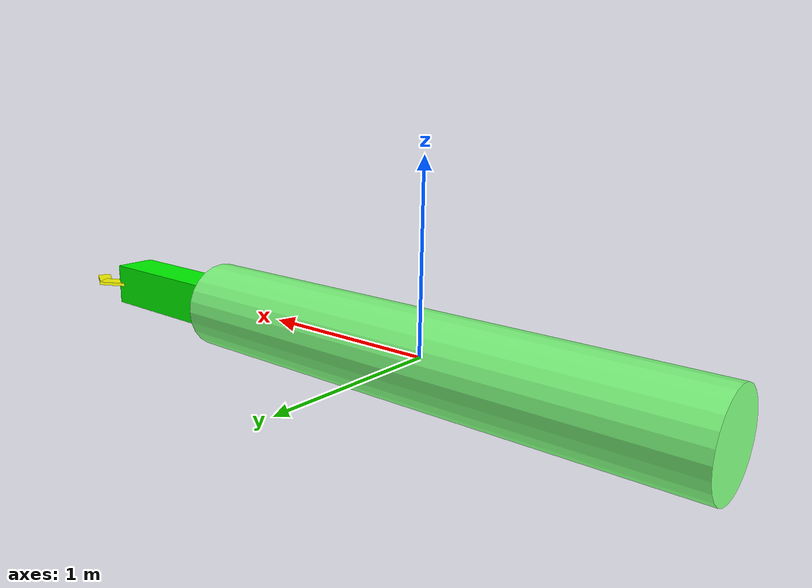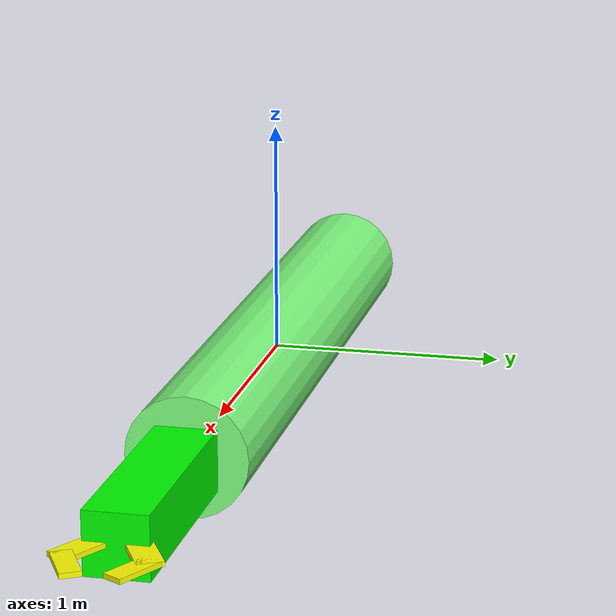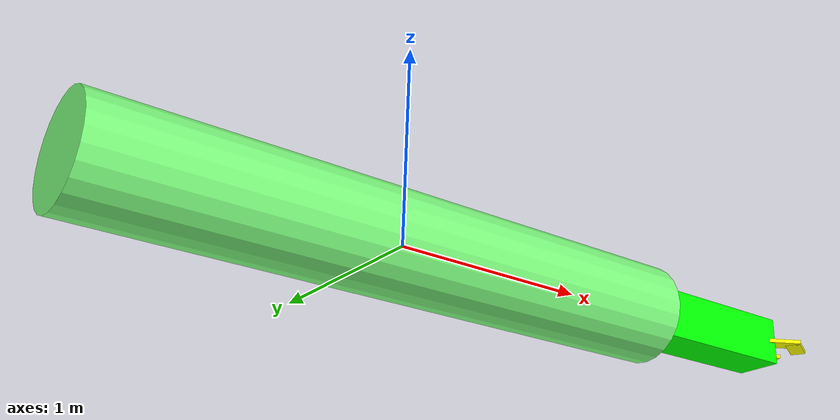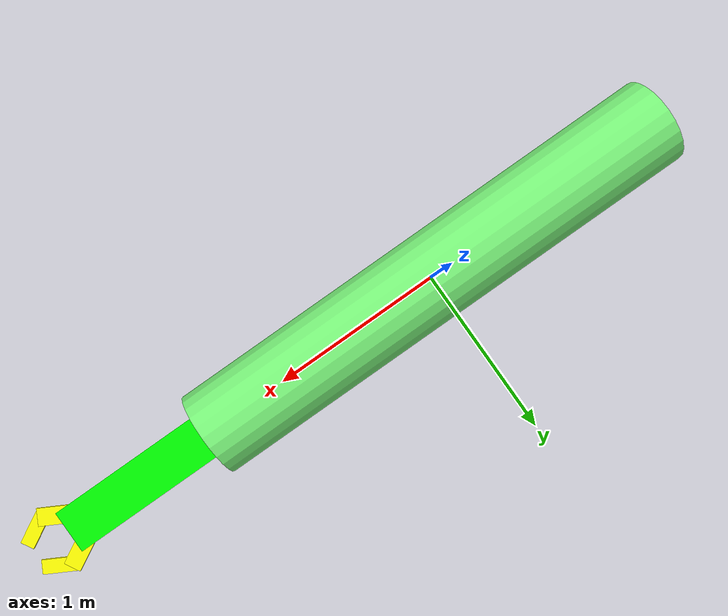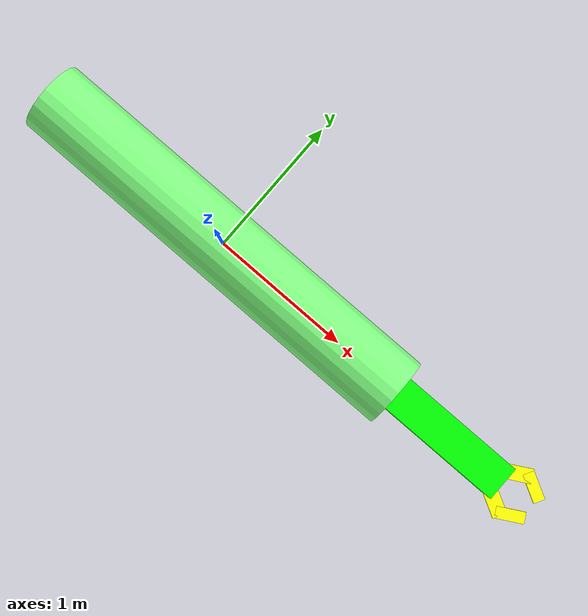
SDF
<?xml version="1.0" ?>
<sdf version="1.8">
<include>
      <uri>Nulina/model.sdf</uri>

      <plugin
        filename="ignition-gazebo-multicopter-motor-model-system"
        name="gz::sim::systems::MulticopterMotorModel">
        <robotNamespace>NULINA</robotNamespace>
        <jointName>NULINA/V0</jointName>
        <linkName>NULINA/VMA0</linkName>
        <turningDirection>ccw</turningDirection>
        <timeConstantUp>0.0125</timeConstantUp>
        <timeConstantDown>0.025</timeConstantDown>
        <maxRotVelocity>1500.0</maxRotVelocity>
        <motorConstant>8.54858e-06</motorConstant>
        <momentConstant>0.016</momentConstant>
        <commandSubTopic>gazebo/command/motor_speed</commandSubTopic>
        <motorNumber>0</motorNumber>
        <rotorDragCoefficient>8.06428e-05</rotorDragCoefficient>
        <rollingMomentCoefficient>1e-06</rollingMomentCoefficient>
        <motorSpeedPubTopic>motor_speed/0</motorSpeedPubTopic>
        <rotorVelocitySlowdownSim>10</rotorVelocitySlowdownSim>
        <motorType>velocity</motorType>
      </plugin>
      <plugin
        filename="ignition-gazebo-multicopter-motor-model-system"
        name="gz::sim::systems::MulticopterMotorModel">
        <robotNamespace>NULINA</robotNamespace>
        <jointName>NULINA/V1</jointName>
        <linkName>NULINA/VMA1</linkName>
        <turningDirection>ccw</turningDirection>
        <timeConstantUp>0.0125</timeConstantUp>
        <timeConstantDown>0.025</timeConstantDown>
        <maxRotVelocity>1500.0</maxRotVelocity>
        <motorConstant>8.54858e-06</motorConstant>
        <momentConstant>0.016</momentConstant>
        <commandSubTopic>gazebo/command/motor_speed</commandSubTopic>
        <motorNumber>1</motorNumber>
        <actuator_number>1</actuator_number>
        <rotorDragCoefficient>8.06428e-05</rotorDragCoefficient>
        <rollingMomentCoefficient>1e-06</rollingMomentCoefficient>
        <motorSpeedPubTopic>motor_speed/1</motorSpeedPubTopic>
        <rotorVelocitySlowdownSim>10</rotorVelocitySlowdownSim>
        <motorType>velocity</motorType>
      </plugin>
      <plugin
        filename="ignition-gazebo-multicopter-motor-model-system"
        name="gz::sim::systems::MulticopterMotorModel">
        <robotNamespace>NULINA</robotNamespace>
        <jointName>NULINA/V2</jointName>
        <linkName>NULINA/VMA2</linkName>
        <turningDirection>cw</turningDirection>
        <timeConstantUp>0.0125</timeConstantUp>
        <timeConstantDown>0.025</timeConstantDown>
        <maxRotVelocity>1500.0</maxRotVelocity>
        <motorConstant>8.54858e-06</motorConstant>
        <momentConstant>0.016</momentConstant>
        <commandSubTopic>gazebo/command/motor_speed</commandSubTopic>
        <motorNumber>2</motorNumber>
        <rotorDragCoefficient>8.06428e-05</rotorDragCoefficient>
        <rollingMomentCoefficient>1e-06</rollingMomentCoefficient>
        <motorSpeedPubTopic>motor_speed/2</motorSpeedPubTopic>
        <rotorVelocitySlowdownSim>10</rotorVelocitySlowdownSim>
        <motorType>velocity</motorType>
      </plugin>
      <plugin
        filename="ignition-gazebo-multicopter-motor-model-system"
        name="gz::sim::systems::MulticopterMotorModel">
        <robotNamespace>NULINA</robotNamespace>
        <jointName>NULINA/V3</jointName>
        <linkName>NULINA/VMA3</linkName>
        <turningDirection>cw</turningDirection>
        <timeConstantUp>0.0125</timeConstantUp>
        <timeConstantDown>0.025</timeConstantDown>
        <maxRotVelocity>1500.0</maxRotVelocity>
        <motorConstant>8.54858e-06</motorConstant>
        <momentConstant>0.016</momentConstant>
        <commandSubTopic>gazebo/command/motor_speed</commandSubTopic>
        <motorNumber>3</motorNumber>
        <rotorDragCoefficient>8.06428e-05</rotorDragCoefficient>
        <rollingMomentCoefficient>1e-06</rollingMomentCoefficient>
        <motorSpeedPubTopic>motor_speed/3</motorSpeedPubTopic>
        <rotorVelocitySlowdownSim>10</rotorVelocitySlowdownSim>
        <motorType>velocity</motorType>
      </plugin>
      <plugin
        filename="ignition-gazebo-multicopter-motor-model-system"
        name="gz::sim::systems::MulticopterMotorModel">
        <robotNamespace>NULINA</robotNamespace>
        <jointName>NULINA/V4</jointName>
        <linkName>NULINA/VMA4</linkName>
        <turningDirection>ccw</turningDirection>
        <timeConstantUp>0.0125</timeConstantUp>
        <timeConstantDown>0.025</timeConstantDown>
        <maxRotVelocity>1500.0</maxRotVelocity>
        <motorConstant>8.54858e-06</motorConstant>
        <momentConstant>0.016</momentConstant>
        <commandSubTopic>gazebo/command/motor_speed</commandSubTopic>
        <motorNumber>4</motorNumber>
        <rotorDragCoefficient>8.06428e-05</rotorDragCoefficient>
        <rollingMomentCoefficient>1e-06</rollingMomentCoefficient>
        <motorSpeedPubTopic>motor_speed/4</motorSpeedPubTopic>
        <rotorVelocitySlowdownSim>10</rotorVelocitySlowdownSim>
        <motorType>velocity</motorType>
      </plugin>
      <plugin
        filename="ignition-gazebo-multicopter-motor-model-system"
        name="gz::sim::systems::MulticopterMotorModel">
        <robotNamespace>NULINA</robotNamespace>
        <jointName>NULINA/V5</jointName>
        <linkName>NULINA/VMA5</linkName>
        <turningDirection>cw</turningDirection>
        <timeConstantUp>0.0125</timeConstantUp>
        <timeConstantDown>0.025</timeConstantDown>
        <maxRotVelocity>1500.0</maxRotVelocity>
        <motorConstant>8.54858e-06</motorConstant>
        <momentConstant>0.016</momentConstant>
        <commandSubTopic>gazebo/command/motor_speed</commandSubTopic>
        <motorNumber>5</motorNumber>
        <rotorDragCoefficient>8.06428e-05</rotorDragCoefficient>
        <rollingMomentCoefficient>1e-06</rollingMomentCoefficient>
        <motorSpeedPubTopic>motor_speed/5</motorSpeedPubTopic>
        <rotorVelocitySlowdownSim>10</rotorVelocitySlowdownSim>
        <motorType>velocity</motorType>
      </plugin>

      <plugin
        filename="ignition-gazebo-odometry-publisher-system"
        name="ignition::gazebo::systems::OdometryPublisher">
        <dimensions>3</dimensions>
      </plugin>
    </include>
</sdf>

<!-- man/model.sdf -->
<sdf version='1.7'>
  <model name="joint_position_controller_demo">
      <pose>0 0 0 0 1.57 0</pose>
      <link name="base_link">
        <pose>0.0 0.0 0.0 0 0 0</pose>
        <inertial>
          <inertia>
            <ixx>2.501</ixx>
            <ixy>0</ixy>
            <ixz>0</ixz>
            <iyy>2.501</iyy>
            <iyz>0</iyz>
            <izz>5</izz>
          </inertia>
          <mass>120.0</mass>
        </inertial>
        <visual name="base_visual">
          <pose>0.0 0.0 0.0 0 0 0</pose>
          <geometry>
            <cylinder>
            	<radius>0.25</radius>
            	<length>3</length>
            </cylinder>
          </geometry>
          <material>
            <ambient>0.5 1.0 0.5 1</ambient>
            <diffuse>0.5 1.0 0.5 1</diffuse>
            <specular>0.0 1.0 0.0 1</specular>
          </material>
        </visual>
        <collision name="base_collision">
          <pose>0.0 0.0 0.0 0 0 0</pose>
          <geometry>
            <box>
              <size>0.5 0.5 0.01</size>
            </box>
          </geometry>
        </collision>
      </link>
      <link name="rotor">
        <pose>0.0 0.0 1.9 0 0 0</pose>
        <inertial>
          <inertia>
            <ixx>0.032</ixx>
            <ixy>0</ixy>
            <ixz>0</ixz>
            <iyy>0.032</iyy>
            <iyz>0</iyz>
            <izz>0.00012</izz>
          </inertia>
          <mass>0.6</mass>
        </inertial>
        <visual name="visual">
          <geometry>
            <box>
              <size>0.25 0.25 1.00</size>
            </box>
          </geometry>
          <material>
            <ambient>0.0 1.0 0.0 1</ambient>
            <diffuse>0.0 1.0 0.0 1</diffuse>
            <specular>0.0 1.0 0.0 1</specular>
          </material>
          <material>
            <ambient>0.2 0.8 0.2 1</ambient>
          </material>
        </visual>
        <collision name="collision">
          <geometry>
            <box>
              <size>0.25 0.1 0.05</size>
            </box>
          </geometry>
        </collision>
      </link>

      <link name="rotor2">
        <pose>0.0 0.12 2.45 -0.5 0 0</pose>
        <inertial>
          <inertia>
            <ixx>0.032</ixx>
            <ixy>0</ixy>
            <ixz>0</ixz>
            <iyy>0.032</iyy>
            <iyz>0</iyz>
            <izz>0.00012</izz>
          </inertia>
          <mass>0.02</mass>
        </inertial>
        <visual name="visual2">
          <geometry>
            <box>
              <size>0.02 0.10 0.20</size>
            </box>
          </geometry>
          <material>
            <ambient>1.0 1.0 0.0 1</ambient>
            <diffuse>1.0 1.0 0.0 1</diffuse>
            <specular>1.0 1.0 0.0 1</specular>
          </material>
          <material>
            <ambient>0.2 0.8 0.2 1</ambient>
          </material>
        </visual>
        <collision name="collision2">
          <geometry>
            <box>
              <size>0.02 0.10 0.20</size>
            </box>
          </geometry>
        </collision>
      </link>

      <link name="cut2">
        <pose>0.0 0.12 2.585 0.5 0 0</pose>
        <inertial>
          <inertia>
            <ixx>0.032</ixx>
            <ixy>0</ixy>
            <ixz>0</ixz>
            <iyy>0.032</iyy>
            <iyz>0</iyz>
            <izz>0.00012</izz>
          </inertia>
          <mass>0.02</mass>
        </inertial>
        <visual name="visual2">
          <geometry>
            <box>
              <size>0.02 0.08 0.20</size>
            </box>
          </geometry>
          <material>
            <ambient>1.0 1.0 0.0 1</ambient>
            <diffuse>1.0 1.0 0.0 1</diffuse>
            <specular>1.0 1.0 0.0 1</specular>
          </material>
          <material>
            <ambient>0.2 0.8 0.2 1</ambient>
          </material>
        </visual>
        <collision name="collision2">
          <geometry>
            <box>
              <size>0.02 0.08 0.20</size>
            </box>
          </geometry>
        </collision>
      </link>

      <link name="rotor3">
        <pose>0.0 -0.12 2.45 0.5 0 0</pose>
        <inertial>
          <inertia>
            <ixx>0.032</ixx>
            <ixy>0</ixy>
            <ixz>0</ixz>
            <iyy>0.032</iyy>
            <iyz>0</iyz>
            <izz>0.00012</izz>
          </inertia>
          <mass>0.02</mass>
        </inertial>
        <visual name="visual2">
          <geometry>
            <box>
              <size>0.02 0.10 0.20</size>
            </box>
          </geometry>
          <material>
            <ambient>1.0 1.0 0.0 1</ambient>
            <diffuse>1.0 1.0 0.0 1</diffuse>
            <specular>1.0 1.0 0.0 1</specular>
          </material>
          <material>
            <ambient>0.2 0.8 0.2 1</ambient>
          </material>
        </visual>
        <collision name="collision2">
          <geometry>
            <box>
              <size>0.02 0.10 0.20</size>
            </box>
          </geometry>
        </collision>
      </link>

      <link name="cut3">
        <pose>0.0 -0.12 2.585 -0.5 0 0</pose>
        <inertial>
          <inertia>
            <ixx>0.032</ixx>
            <ixy>0</ixy>
            <ixz>0</ixz>
            <iyy>0.032</iyy>
            <iyz>0</iyz>
            <izz>0.00012</izz>
          </inertia>
          <mass>0.02</mass>
        </inertial>
        <visual name="visual2">
          <geometry>
            <box>
              <size>0.02 0.08 0.20</size>
            </box>
          </geometry>
          <material>
            <ambient>1.0 1.0 0.0 1</ambient>
            <diffuse>1.0 1.0 0.0 1</diffuse>
            <specular>1.0 1.0 0.0 1</specular>
          </material>
          <material>
            <ambient>0.2 0.8 0.2 1</ambient>
          </material>
        </visual>
        <collision name="collision2">
          <geometry>
            <box>
              <size>0.02 0.08 0.20</size>
            </box>
          </geometry>
        </collision>
      </link>

      <joint name="world_fixed" type="fixed">
        <parent>world</parent>
        <child>base_link</child>
      </joint>

      <joint name="j1" type="revolute">
        <pose>0 0 -0.5 0 0 0</pose>
        <parent>base_link</parent>
        <child>rotor</child>
        <axis>
          <xyz>0 0 1</xyz>
          <dynamics>
            <damping>0.5</damping>
          </dynamics>
        </axis>
      </joint>

      <joint name="j2" type="revolute">
        <pose>0 0 0 0 0 0</pose>
        <parent>rotor</parent>
        <child>rotor2</child>
        <axis>
          <xyz>1 0 0</xyz>
          <dynamics>
            <damping>0.5</damping>
          </dynamics>
        </axis>
      </joint>

      <joint name="j5" type="revolute">
        <pose>0 0 0 0 0 0</pose>
        <parent>rotor</parent>
        <child>rotor3</child>
        <axis>
          <xyz>1 0 0</xyz>
          <dynamics>
            <damping>0.5</damping>
          </dynamics>
        </axis>
      </joint>

      <joint name="j3" type="fixed">
        <pose>0 0 0 0 0 0</pose>
        <parent>rotor2</parent>
        <child>cut2</child>
      </joint>

      <joint name="j4" type="fixed">
        <pose>0 0 0 0 0 0</pose>
        <parent>rotor3</parent>
        <child>cut3</child>
      </joint>

      <plugin
        filename="ignition-gazebo-joint-position-controller-system"
        name="gz::sim::systems::JointPositionController">
        <joint_name>j1</joint_name>
        <topic>rotor_cmd</topic>
        <p_gain>1</p_gain>
        <i_gain>0.1</i_gain>
        <d_gain>0.01</d_gain>
        <i_max>1</i_max>
        <i_min>-1</i_min>
        <cmd_max>1000</cmd_max>
        <cmd_min>-1000</cmd_min>
      </plugin>

      <plugin
        filename="ignition-gazebo-joint-position-controller-system"
        name="gz::sim::systems::JointPositionController">
        <joint_name>j2</joint_name>
        <topic>rotor_cmd2</topic>
        <p_gain>1</p_gain>
        <i_gain>0.1</i_gain>
        <d_gain>0.01</d_gain>
        <i_max>1</i_max>
        <i_min>-1</i_min>
        <cmd_max>100</cmd_max>
        <cmd_min>-100</cmd_min>
      </plugin>

      <plugin
        filename="ignition-gazebo-joint-position-controller-system"
        name="gz::sim::systems::JointPositionController">
        <joint_name>j5</joint_name>
        <topic>rotor_cmd3</topic>
        <p_gain>1</p_gain>
        <i_gain>0.1</i_gain>
        <d_gain>0.01</d_gain>
        <i_max>1</i_max>
        <i_min>-1</i_min>
        <cmd_max>100</cmd_max>
        <cmd_min>-100</cmd_min>
      </plugin>

    </model>
</sdf>
